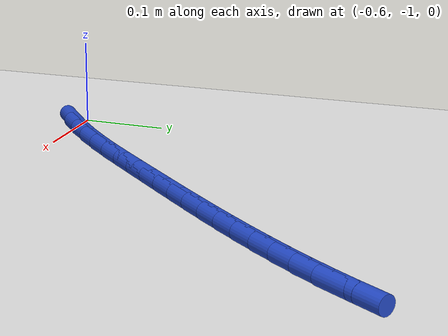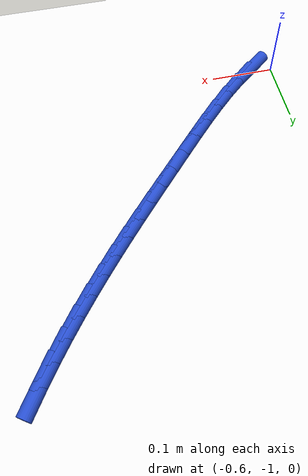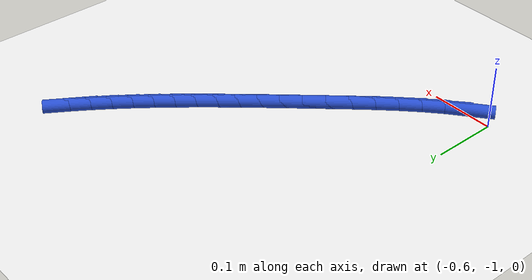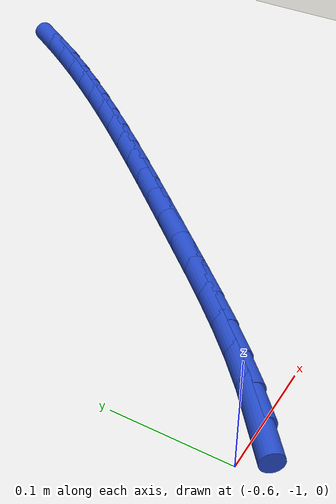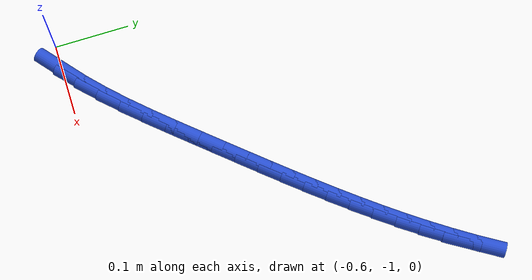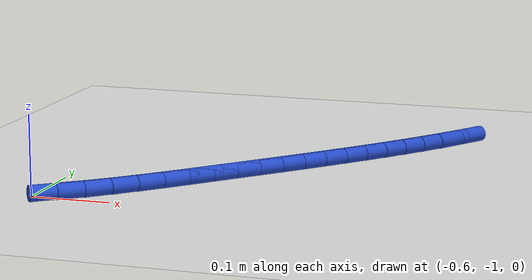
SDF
<sdf version="1.6">
 <world name="default">
  <model name="ground_plane">
   <static>1</static>
   <link name="link">
    <collision name="collision">
     <geometry><plane><normal>0 0 1</normal><size>100 100</size></plane></geometry>
     <surface><friction><ode><mu>100</mu><mu2>50</mu2></ode></friction></surface>
    </collision>
    <visual name="visual">
     <cast_shadows>0</cast_shadows>
     <geometry><plane><normal>0 0 1</normal><size>100 100</size></plane></geometry>
     <material>
      <script><uri>file://media/materials/scripts/gazebo.material</uri><name>Gazebo/WhiteGlow</name></script>
     </material>
    </visual>
   </link>
  </model>
  <model name="line">
   <link name="link_183">
    <pose>-0.5610351549654113 -0.9988596451779694 0.01 0 1.57 0.67399176518427</pose>
    <collision name="collision">
     <geometry><cylinder><radius>0.01</radius><length>0.08</length></cylinder></geometry>
    </collision>
    <visual name="visual">
     <material>
      <script><name>Gazebo/Blue</name><uri>file://media/materials/scripts/gazebo.material</uri></script>
     </material>
     <geometry><cylinder><radius>0.01</radius><length>0.08</length></cylinder></geometry>
    </visual>
   </link>
   <link name="link_184">
    <pose>-0.5356635967885531 -0.9785935527440504 0.01 0 1.57 0.7275719963830881</pose>
    <collision name="collision">
     <geometry><cylinder><radius>0.01</radius><length>0.08</length></cylinder></geometry>
    </collision>
    <visual name="visual">
     <material>
      <script><name>Gazebo/Blue</name><uri>file://media/materials/scripts/gazebo.material</uri></script>
     </material>
     <geometry><cylinder><radius>0.01</radius><length>0.08</length></cylinder></geometry>
    </visual>
   </link>
   <link name="link_185">
    <pose>-0.5108794606732235 -0.9565219296848976 0.01 0 1.57 0.7689484602471793</pose>
    <collision name="collision">
     <geometry><cylinder><radius>0.01</radius><length>0.08</length></cylinder></geometry>
    </collision>
    <visual name="visual">
     <material>
      <script><name>Gazebo/Blue</name><uri>file://media/materials/scripts/gazebo.material</uri></script>
     </material>
     <geometry><cylinder><radius>0.01</radius><length>0.08</length></cylinder></geometry>
    </visual>
   </link>
   <link name="link_186">
    <pose>-0.48663650023031063 -0.9330637102735225 0.01 0 1.57 0.7994681353612354</pose>
    <collision name="collision">
     <geometry><cylinder><radius>0.01</radius><length>0.08</length></cylinder></geometry>
    </collision>
    <visual name="visual">
     <material>
      <script><name>Gazebo/Blue</name><uri>file://media/materials/scripts/gazebo.material</uri></script>
     </material>
     <geometry><cylinder><radius>0.01</radius><length>0.08</length></cylinder></geometry>
    </visual>
   </link>
   <link name="link_187">
    <pose>-0.46288846907070436 -0.9086378287829391 0.01 0 1.57 0.8200874469969536</pose>
    <collision name="collision">
     <geometry><cylinder><radius>0.01</radius><length>0.08</length></cylinder></geometry>
    </collision>
    <visual name="visual">
     <material>
      <script><name>Gazebo/Blue</name><uri>file://media/materials/scripts/gazebo.material</uri></script>
     </material>
     <geometry><cylinder><radius>0.01</radius><length>0.08</length></cylinder></geometry>
    </visual>
   </link>
   <link name="link_188">
    <pose>-0.4395891208052927 -0.8836632194861597 0.01 0 1.57 0.8313539220287678</pose>
    <collision name="collision">
     <geometry><cylinder><radius>0.01</radius><length>0.08</length></cylinder></geometry>
    </collision>
    <visual name="visual">
     <material>
      <script><name>Gazebo/Blue</name><uri>file://media/materials/scripts/gazebo.material</uri></script>
     </material>
     <geometry><cylinder><radius>0.01</radius><length>0.08</length></cylinder></geometry>
    </visual>
   </link>
   <link name="link_189">
    <pose>-0.4166922090449644 -0.8585588166561968 0.01 0 1.57 0.8340555063097256</pose>
    <collision name="collision">
     <geometry><cylinder><radius>0.01</radius><length>0.08</length></cylinder></geometry>
    </collision>
    <visual name="visual">
     <material>
      <script><name>Gazebo/Blue</name><uri>file://media/materials/scripts/gazebo.material</uri></script>
     </material>
     <geometry><cylinder><radius>0.01</radius><length>0.08</length></cylinder></geometry>
    </visual>
   </link>
   <link name="link_190">
    <pose>-0.39415541629408907 -0.8337147773967626 0.01 0 1.57 0.8348897770923491</pose>
    <collision name="collision">
     <geometry><cylinder><radius>0.01</radius><length>0.08</length></cylinder></geometry>
    </collision>
    <visual name="visual">
     <material>
      <script><name>Gazebo/Blue</name><uri>file://media/materials/scripts/gazebo.material</uri></script>
     </material>
     <geometry><cylinder><radius>0.01</radius><length>0.08</length></cylinder></geometry>
    </visual>
   </link>
   <link name="link_191">
    <pose>-0.3719769157043153 -0.8092246851790202 0.01 0 1.57 0.8379215295874572</pose>
    <collision name="collision">
     <geometry><cylinder><radius>0.01</radius><length>0.08</length></cylinder></geometry>
    </collision>
    <visual name="visual">
     <material>
      <script><name>Gazebo/Blue</name><uri>file://media/materials/scripts/gazebo.material</uri></script>
     </material>
     <geometry><cylinder><radius>0.01</radius><length>0.08</length></cylinder></geometry>
    </visual>
   </link>
   <link name="link_192">
    <pose>-0.3501787360413811 -0.785007393095546 0.01 0 1.57 0.843285151270997</pose>
    <collision name="collision">
     <geometry><cylinder><radius>0.01</radius><length>0.08</length></cylinder></geometry>
    </collision>
    <visual name="visual">
     <material>
      <script><name>Gazebo/Blue</name><uri>file://media/materials/scripts/gazebo.material</uri></script>
     </material>
     <geometry><cylinder><radius>0.01</radius><length>0.08</length></cylinder></geometry>
    </visual>
   </link>
   <link name="link_193">
    <pose>-0.32878321317496795 -0.7609795048569474 0.01 0 1.57 0.8510464410932792</pose>
    <collision name="collision">
     <geometry><cylinder><radius>0.01</radius><length>0.08</length></cylinder></geometry>
    </collision>
    <visual name="visual">
     <material>
      <script><name>Gazebo/Blue</name><uri>file://media/materials/scripts/gazebo.material</uri></script>
     </material>
     <geometry><cylinder><radius>0.01</radius><length>0.08</length></cylinder></geometry>
    </visual>
   </link>
   <link name="link_194">
    <pose>-0.3078126829747576 -0.7370576241738318 0.01 0 1.57 0.8612514467047087</pose>
    <collision name="collision">
     <geometry><cylinder><radius>0.01</radius><length>0.08</length></cylinder></geometry>
    </collision>
    <visual name="visual">
     <material>
      <script><name>Gazebo/Blue</name><uri>file://media/materials/scripts/gazebo.material</uri></script>
     </material>
     <geometry><cylinder><radius>0.01</radius><length>0.08</length></cylinder></geometry>
    </visual>
   </link>
   <link name="link_195">
    <pose>-0.287289481310431 -0.7131583547568057 0.01 0 1.57 0.8739232524114376</pose>
    <collision name="collision">
     <geometry><cylinder><radius>0.01</radius><length>0.08</length></cylinder></geometry>
    </collision>
    <visual name="visual">
     <material>
      <script><name>Gazebo/Blue</name><uri>file://media/materials/scripts/gazebo.material</uri></script>
     </material>
     <geometry><cylinder><radius>0.01</radius><length>0.08</length></cylinder></geometry>
    </visual>
   </link>
   <link name="link_196">
    <pose>-0.2672359440516709 -0.6891983003164778 0.01 0 1.57 0.8890586651691817</pose>
    <collision name="collision">
     <geometry><cylinder><radius>0.01</radius><length>0.08</length></cylinder></geometry>
    </collision>
    <visual name="visual">
     <material>
      <script><name>Gazebo/Blue</name><uri>file://media/materials/scripts/gazebo.material</uri></script>
     </material>
     <geometry><cylinder><radius>0.01</radius><length>0.08</length></cylinder></geometry>
    </visual>
   </link>
   <link name="link_197">
    <pose>-0.24767440706815827 -0.6650940645634547 0.01 0 1.57 0.9066249770063923</pose>
    <collision name="collision">
     <geometry><cylinder><radius>0.01</radius><length>0.08</length></cylinder></geometry>
    </collision>
    <visual name="visual">
     <material>
      <script><name>Gazebo/Blue</name><uri>file://media/materials/scripts/gazebo.material</uri></script>
     </material>
     <geometry><cylinder><radius>0.01</radius><length>0.08</length></cylinder></geometry>
    </visual>
   </link>
   <link name="link_198">
    <pose>-0.2286272062295748 -0.6407622512083437 0.01 0 1.57 0.926557051121466</pose>
    <collision name="collision">
     <geometry><cylinder><radius>0.01</radius><length>0.08</length></cylinder></geometry>
    </collision>
    <visual name="visual">
     <material>
      <script><name>Gazebo/Blue</name><uri>file://media/materials/scripts/gazebo.material</uri></script>
     </material>
     <geometry><cylinder><radius>0.01</radius><length>0.08</length></cylinder></geometry>
    </visual>
   </link>
   <link name="link_199">
    <pose>-0.21011667740560158 -0.6161194639617515 0.01 0 1.57 0.9487550400370213</pose>
    <collision name="collision">
     <geometry><cylinder><radius>0.01</radius><length>0.08</length></cylinder></geometry>
    </collision>
    <visual name="visual">
     <material>
      <script><name>Gazebo/Blue</name><uri>file://media/materials/scripts/gazebo.material</uri></script>
     </material>
     <geometry><cylinder><radius>0.01</radius><length>0.08</length></cylinder></geometry>
    </visual>
   </link>
   <link name="link_200">
    <pose>-0.1921651564659211 -0.5910823065342865 0.01 0 1.57 0.9730830832775775</pose>
    <collision name="collision">
     <geometry><cylinder><radius>0.01</radius><length>0.08</length></cylinder></geometry>
    </collision>
    <visual name="visual">
     <material>
      <script><name>Gazebo/Blue</name><uri>file://media/materials/scripts/gazebo.material</uri></script>
     </material>
     <geometry><cylinder><radius>0.01</radius><length>0.08</length></cylinder></geometry>
    </visual>
   </link>
   <link name="link_201">
    <pose>-0.1747949792802145 -0.5655673826365555 0.01 0 1.57 0.9993693102311093</pose>
    <collision name="collision">
     <geometry><cylinder><radius>0.01</radius><length>0.08</length></cylinder></geometry>
    </collision>
    <visual name="visual">
     <material>
      <script><name>Gazebo/Blue</name><uri>file://media/materials/scripts/gazebo.material</uri></script>
     </material>
     <geometry><cylinder><radius>0.01</radius><length>0.08</length></cylinder></geometry>
    </visual>
   </link>
  </model>
 </world>
</sdf>
